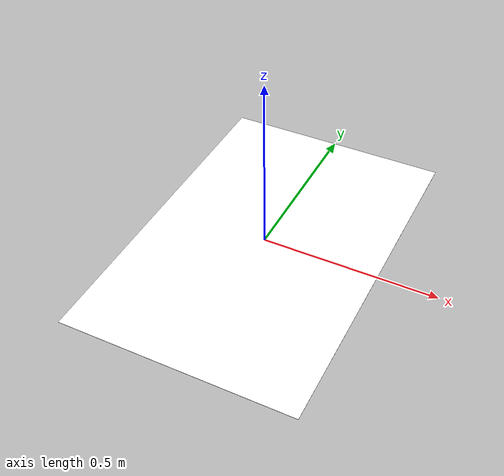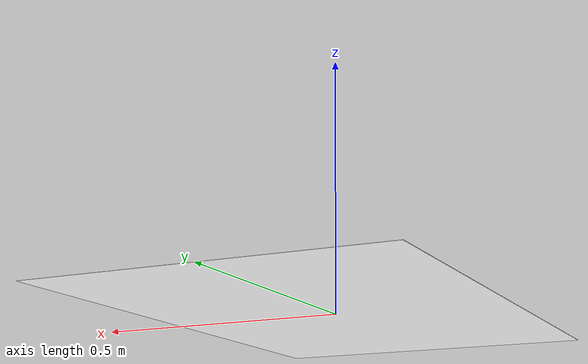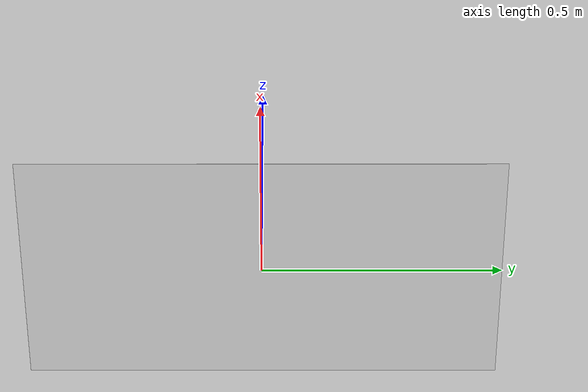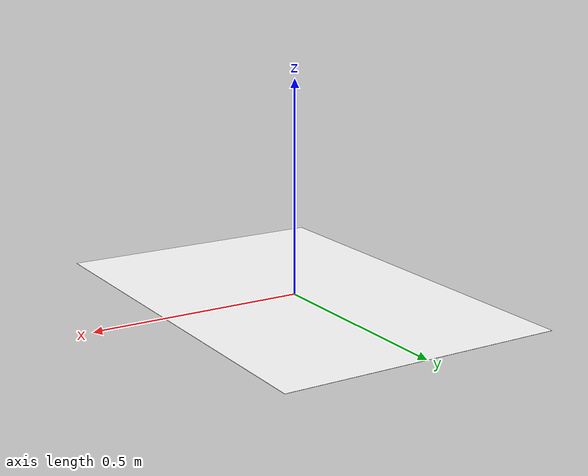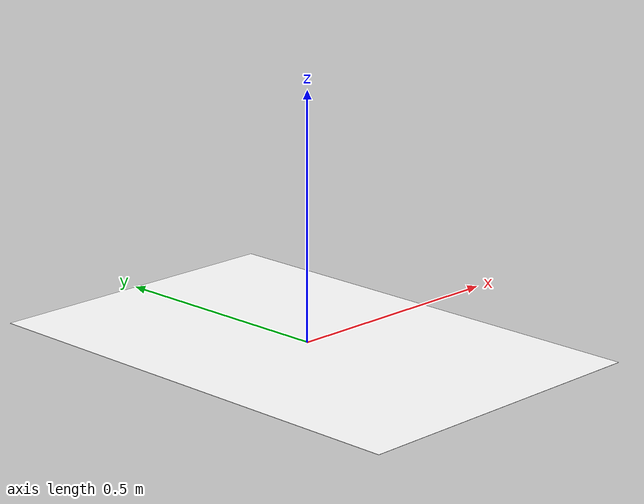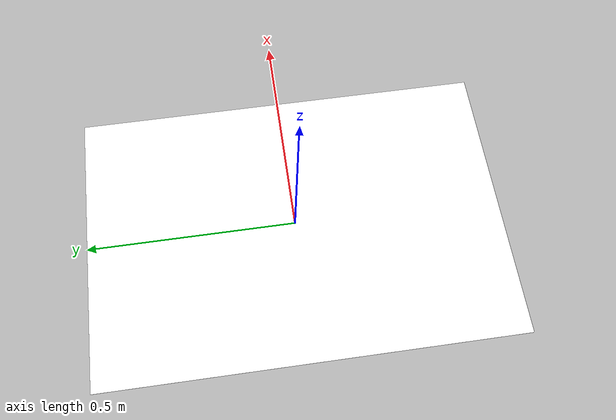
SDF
<?xml version="1.0" ?>
<sdf version="1.5">
  <model name="track">
    <static>true</static>
    <link name="link">
      <collision name="collision">
        <geometry>
          <plane>
            <normal>0 0 1</normal>
            <size>0.66323 1.0</size>
          </plane>
        </geometry>
        <surface>
          <contact>
             <collide_bitmask>0xffff</collide_bitmask>
          </contact>
          <friction>
            <ode>
              <mu>1</mu>
              <mu2>1</mu2>
            </ode>
          </friction>
        </surface>
      </collision>

      <visual name="visual">
        <cast_shadows>true</cast_shadows>
        <transparency> 0 </transparency>
        <geometry>
          <plane>
            <normal>0 0 1</normal>
	          <size>0.66323 1.0</size>
          </plane>
        </geometry>
        <material>
          <ambient>1 1 1 1 </ambient>
          <diffuse>1 1 1 1 </diffuse>
          <specular>0 0 0 0</specular>
          <emissive>1 1 1 1 </emissive>
            <script>
              <uri>model://track/materials/scripts</uri>
              <uri>model://track/materials/textures</uri>
              <name>BFMC_MATERIAL</name>
            </script>
        </material>
      </visual>
    </link>
  </model>
</sdf>
